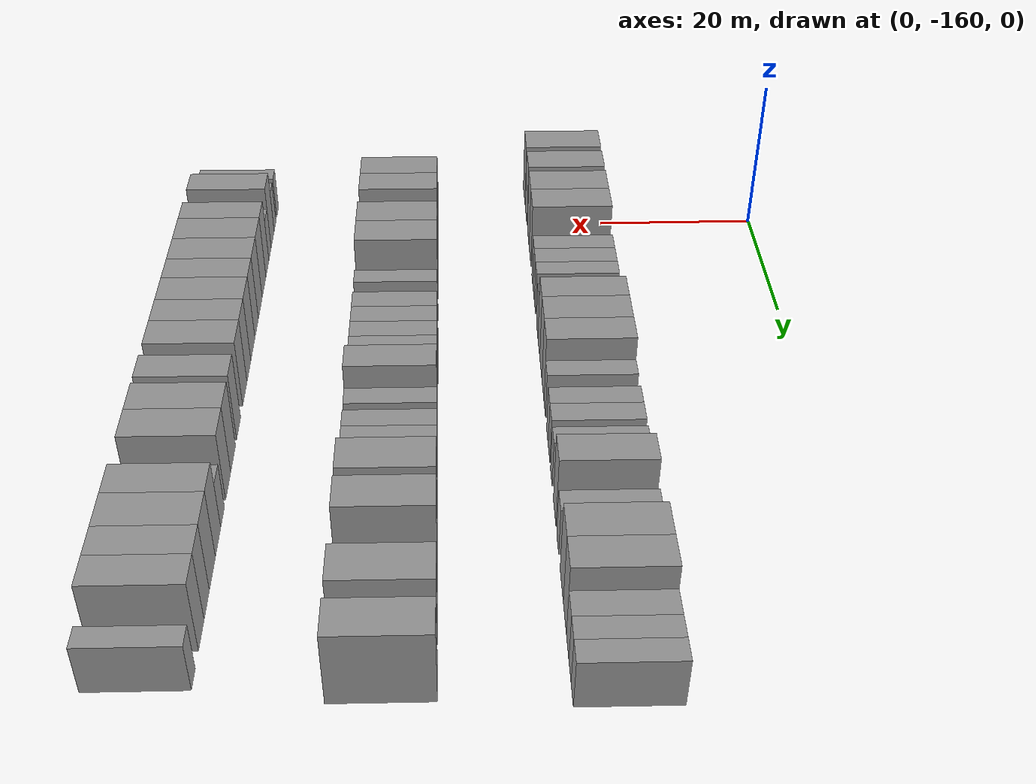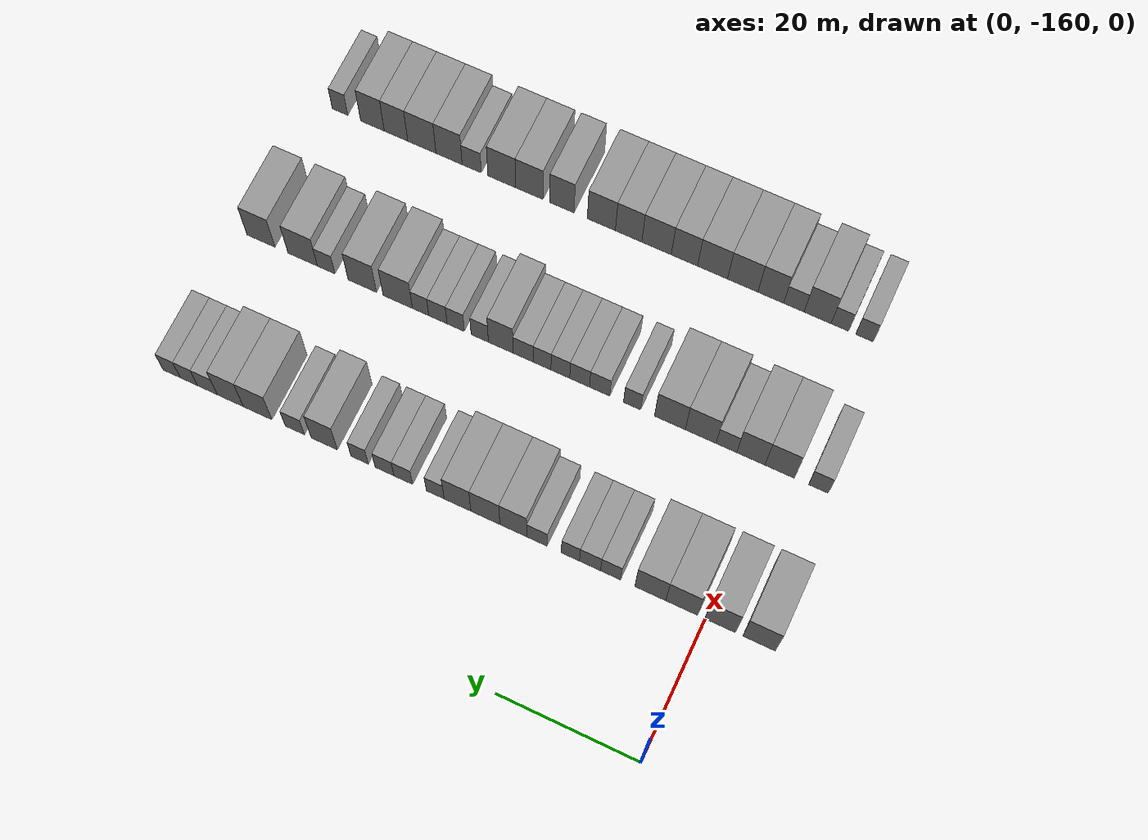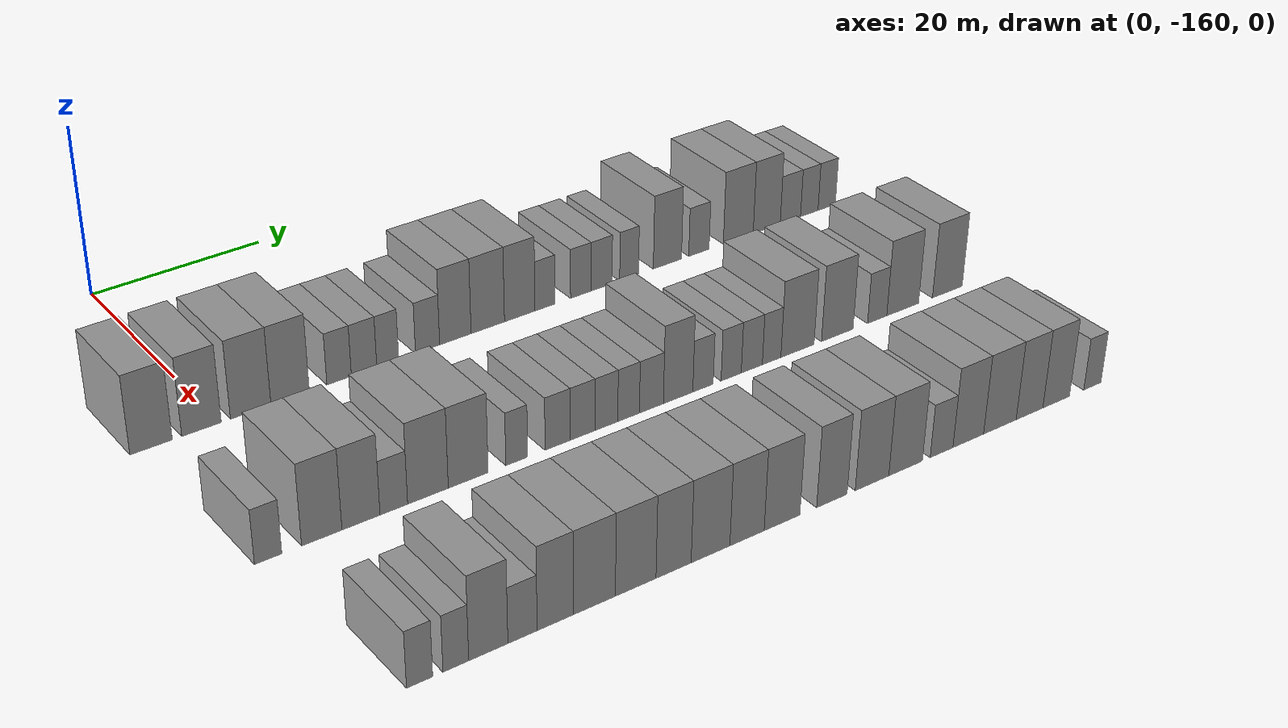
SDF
<sdf version="1.6">
 <world name="default">
  <model name="building_22">
   <static>1</static>
   <pose>25.0000 -167.3028 0 0.000000 0.000000 0.000000</pose>
   <link name="link">
    <pose>0 0 4.50 0 0 0</pose>
    <collision name="collision"><geometry><box><size>10.0000 4.4582 9.0000</size></box></geometry></collision>
    <visual name="visual">
     <cast_shadows>0</cast_shadows>
     <geometry><box><size>10.0000 4.4582 9.0000</size></box></geometry>
     <material>
      <script>
       <uri>model://grey_wall/materials/scripts</uri>
       <uri>model://grey_wall/materials/textures</uri>
       <name>vrc/grey_wall</name>
      </script>
     </material>
    </visual>
   </link>
  </model>
  <model name="building_23">
   <static>1</static>
   <pose>25.0000 -161.9479 0 0.000000 0.000000 0.000000</pose>
   <link name="link">
    <pose>0 0 4.50 0 0 0</pose>
    <collision name="collision"><geometry><box><size>10.0000 4.2517 9.0000</size></box></geometry></collision>
    <visual name="visual">
     <cast_shadows>0</cast_shadows>
     <geometry><box><size>10.0000 4.2517 9.0000</size></box></geometry>
     <material>
      <script>
       <uri>model://grey_wall/materials/scripts</uri>
       <uri>model://grey_wall/materials/textures</uri>
       <name>vrc/grey_wall</name>
      </script>
     </material>
    </visual>
   </link>
  </model>
  <model name="building_24">
   <static>1</static>
   <pose>25.0000 -156.5929 0 0.000000 0.000000 0.000000</pose>
   <link name="link">
    <pose>0 0 4.50 0 0 0</pose>
    <collision name="collision"><geometry><box><size>10.0000 4.4582 9.0000</size></box></geometry></collision>
    <visual name="visual">
     <cast_shadows>0</cast_shadows>
     <geometry><box><size>10.0000 4.4582 9.0000</size></box></geometry>
     <material>
      <script>
       <uri>model://grey_wall/materials/scripts</uri>
       <uri>model://grey_wall/materials/textures</uri>
       <name>vrc/grey_wall</name>
      </script>
     </material>
    </visual>
   </link>
  </model>
  <model name="building_25">
   <static>1</static>
   <pose>25.0000 -152.2064 0 0.000000 0.000000 0.000000</pose>
   <link name="link">
    <pose>0 0 4.50 0 0 0</pose>
    <collision name="collision"><geometry><box><size>10.0000 4.3148 9.0000</size></box></geometry></collision>
    <visual name="visual">
     <cast_shadows>0</cast_shadows>
     <geometry><box><size>10.0000 4.3148 9.0000</size></box></geometry>
     <material>
      <script>
       <uri>model://grey_wall/materials/scripts</uri>
       <uri>model://grey_wall/materials/textures</uri>
       <name>vrc/grey_wall</name>
      </script>
     </material>
    </visual>
   </link>
  </model>
  <model name="building_26">
   <static>1</static>
   <pose>25.0000 -146.6373 0 0.000000 0.000000 0.000000</pose>
   <link name="link">
    <pose>0 0 3.00 0 0 0</pose>
    <collision name="collision"><geometry><box><size>10.0000 2.8234 6.0000</size></box></geometry></collision>
    <visual name="visual">
     <cast_shadows>0</cast_shadows>
     <geometry><box><size>10.0000 2.8234 6.0000</size></box></geometry>
     <material>
      <script>
       <uri>model://grey_wall/materials/scripts</uri>
       <uri>model://grey_wall/materials/textures</uri>
       <name>vrc/grey_wall</name>
      </script>
     </material>
    </visual>
   </link>
  </model>
  <model name="building_27">
   <static>1</static>
   <pose>25.0000 -143.7448 0 0.000000 0.000000 0.000000</pose>
   <link name="link">
    <pose>0 0 3.00 0 0 0</pose>
    <collision name="collision"><geometry><box><size>10.0000 2.9617 6.0000</size></box></geometry></collision>
    <visual name="visual">
     <cast_shadows>0</cast_shadows>
     <geometry><box><size>10.0000 2.9617 6.0000</size></box></geometry>
     <material>
      <script>
       <uri>model://grey_wall/materials/scripts</uri>
       <uri>model://grey_wall/materials/textures</uri>
       <name>vrc/grey_wall</name>
      </script>
     </material>
    </visual>
   </link>
  </model>
  <model name="building_28">
   <static>1</static>
   <pose>25.0000 -140.9733 0 0.000000 0.000000 0.000000</pose>
   <link name="link">
    <pose>0 0 3.00 0 0 0</pose>
    <collision name="collision"><geometry><box><size>10.0000 2.5812 6.0000</size></box></geometry></collision>
    <visual name="visual">
     <cast_shadows>0</cast_shadows>
     <geometry><box><size>10.0000 2.5812 6.0000</size></box></geometry>
     <material>
      <script>
       <uri>model://grey_wall/materials/scripts</uri>
       <uri>model://grey_wall/materials/textures</uri>
       <name>vrc/grey_wall</name>
      </script>
     </material>
    </visual>
   </link>
  </model>
  <model name="building_29">
   <static>1</static>
   <pose>25.0000 -136.2262 0 0.000000 0.000000 0.000000</pose>
   <link name="link">
    <pose>0 0 3.00 0 0 0</pose>
    <collision name="collision"><geometry><box><size>10.0000 2.9131 6.0000</size></box></geometry></collision>
    <visual name="visual">
     <cast_shadows>0</cast_shadows>
     <geometry><box><size>10.0000 2.9131 6.0000</size></box></geometry>
     <material>
      <script>
       <uri>model://grey_wall/materials/scripts</uri>
       <uri>model://grey_wall/materials/textures</uri>
       <name>vrc/grey_wall</name>
      </script>
     </material>
    </visual>
   </link>
  </model>
  <model name="building_30">
   <static>1</static>
   <pose>25.0000 -132.8486 0 0.000000 0.000000 0.000000</pose>
   <link name="link">
    <pose>0 0 4.50 0 0 0</pose>
    <collision name="collision"><geometry><box><size>10.0000 3.8419 9.0000</size></box></geometry></collision>
    <visual name="visual">
     <cast_shadows>0</cast_shadows>
     <geometry><box><size>10.0000 3.8419 9.0000</size></box></geometry>
     <material>
      <script>
       <uri>model://grey_wall/materials/scripts</uri>
       <uri>model://grey_wall/materials/textures</uri>
       <name>vrc/grey_wall</name>
      </script>
     </material>
    </visual>
   </link>
  </model>
  <model name="building_31">
   <static>1</static>
   <pose>25.0000 -128.8519 0 0.000000 0.000000 0.000000</pose>
   <link name="link">
    <pose>0 0 4.50 0 0 0</pose>
    <collision name="collision"><geometry><box><size>10.0000 4.1516 9.0000</size></box></geometry></collision>
    <visual name="visual">
     <cast_shadows>0</cast_shadows>
     <geometry><box><size>10.0000 4.1516 9.0000</size></box></geometry>
     <material>
      <script>
       <uri>model://grey_wall/materials/scripts</uri>
       <uri>model://grey_wall/materials/textures</uri>
       <name>vrc/grey_wall</name>
      </script>
     </material>
    </visual>
   </link>
  </model>
  <model name="building_32">
   <static>1</static>
   <pose>25.0000 -124.8471 0 0.000000 0.000000 0.000000</pose>
   <link name="link">
    <pose>0 0 4.50 0 0 0</pose>
    <collision name="collision"><geometry><box><size>10.0000 3.8579 9.0000</size></box></geometry></collision>
    <visual name="visual">
     <cast_shadows>0</cast_shadows>
     <geometry><box><size>10.0000 3.8579 9.0000</size></box></geometry>
     <material>
      <script>
       <uri>model://grey_wall/materials/scripts</uri>
       <uri>model://grey_wall/materials/textures</uri>
       <name>vrc/grey_wall</name>
      </script>
     </material>
    </visual>
   </link>
  </model>
  <model name="building_33">
   <static>1</static>
   <pose>25.0000 -121.6327 0 0.000000 0.000000 0.000000</pose>
   <link name="link">
    <pose>0 0 3.00 0 0 0</pose>
    <collision name="collision"><geometry><box><size>10.0000 2.5709 6.0000</size></box></geometry></collision>
    <visual name="visual">
     <cast_shadows>0</cast_shadows>
     <geometry><box><size>10.0000 2.5709 6.0000</size></box></geometry>
     <material>
      <script>
       <uri>model://grey_wall/materials/scripts</uri>
       <uri>model://grey_wall/materials/textures</uri>
       <name>vrc/grey_wall</name>
      </script>
     </material>
    </visual>
   </link>
  </model>
  <model name="building_34">
   <static>1</static>
   <pose>25.0000 -117.0022 0 0.000000 0.000000 0.000000</pose>
   <link name="link">
    <pose>0 0 3.00 0 0 0</pose>
    <collision name="collision"><geometry><box><size>10.0000 2.6902 6.0000</size></box></geometry></collision>
    <visual name="visual">
     <cast_shadows>0</cast_shadows>
     <geometry><box><size>10.0000 2.6902 6.0000</size></box></geometry>
     <material>
      <script>
       <uri>model://grey_wall/materials/scripts</uri>
       <uri>model://grey_wall/materials/textures</uri>
       <name>vrc/grey_wall</name>
      </script>
     </material>
    </visual>
   </link>
  </model>
  <model name="building_35">
   <static>1</static>
   <pose>25.0000 -114.2729 0 0.000000 0.000000 0.000000</pose>
   <link name="link">
    <pose>0 0 3.00 0 0 0</pose>
    <collision name="collision"><geometry><box><size>10.0000 2.7684 6.0000</size></box></geometry></collision>
    <visual name="visual">
     <cast_shadows>0</cast_shadows>
     <geometry><box><size>10.0000 2.7684 6.0000</size></box></geometry>
     <material>
      <script>
       <uri>model://grey_wall/materials/scripts</uri>
       <uri>model://grey_wall/materials/textures</uri>
       <name>vrc/grey_wall</name>
      </script>
     </material>
    </visual>
   </link>
  </model>
  <model name="building_36">
   <static>1</static>
   <pose>25.0000 -110.6219 0 0.000000 0.000000 0.000000</pose>
   <link name="link">
    <pose>0 0 3.00 0 0 0</pose>
    <collision name="collision"><geometry><box><size>10.0000 2.5334 6.0000</size></box></geometry></collision>
    <visual name="visual">
     <cast_shadows>0</cast_shadows>
     <geometry><box><size>10.0000 2.5334 6.0000</size></box></geometry>
     <material>
      <script>
       <uri>model://grey_wall/materials/scripts</uri>
       <uri>model://grey_wall/materials/textures</uri>
       <name>vrc/grey_wall</name>
      </script>
     </material>
    </visual>
   </link>
  </model>
  <model name="building_37">
   <static>1</static>
   <pose>25.0000 -105.4284 0 0.000000 0.000000 0.000000</pose>
   <link name="link">
    <pose>0 0 4.50 0 0 0</pose>
    <collision name="collision"><geometry><box><size>10.0000 3.8535 9.0000</size></box></geometry></collision>
    <visual name="visual">
     <cast_shadows>0</cast_shadows>
     <geometry><box><size>10.0000 3.8535 9.0000</size></box></geometry>
     <material>
      <script>
       <uri>model://grey_wall/materials/scripts</uri>
       <uri>model://grey_wall/materials/textures</uri>
       <name>vrc/grey_wall</name>
      </script>
     </material>
    </visual>
   </link>
  </model>
  <model name="building_38">
   <static>1</static>
   <pose>25.0000 -101.0834 0 0.000000 0.000000 0.000000</pose>
   <link name="link">
    <pose>0 0 3.00 0 0 0</pose>
    <collision name="collision"><geometry><box><size>10.0000 2.8365 6.0000</size></box></geometry></collision>
    <visual name="visual">
     <cast_shadows>0</cast_shadows>
     <geometry><box><size>10.0000 2.8365 6.0000</size></box></geometry>
     <material>
      <script>
       <uri>model://grey_wall/materials/scripts</uri>
       <uri>model://grey_wall/materials/textures</uri>
       <name>vrc/grey_wall</name>
      </script>
     </material>
    </visual>
   </link>
  </model>
  <model name="building_39">
   <static>1</static>
   <pose>25.0000 -95.5377 0 0.000000 0.000000 0.000000</pose>
   <link name="link">
    <pose>0 0 4.50 0 0 0</pose>
    <collision name="collision"><geometry><box><size>10.0000 4.2549 9.0000</size></box></geometry></collision>
    <visual name="visual">
     <cast_shadows>0</cast_shadows>
     <geometry><box><size>10.0000 4.2549 9.0000</size></box></geometry>
     <material>
      <script>
       <uri>model://grey_wall/materials/scripts</uri>
       <uri>model://grey_wall/materials/textures</uri>
       <name>vrc/grey_wall</name>
      </script>
     </material>
    </visual>
   </link>
  </model>
  <model name="building_40">
   <static>1</static>
   <pose>25.0000 -91.4552 0 0.000000 0.000000 0.000000</pose>
   <link name="link">
    <pose>0 0 4.50 0 0 0</pose>
    <collision name="collision"><geometry><box><size>10.0000 3.9101 9.0000</size></box></geometry></collision>
    <visual name="visual">
     <cast_shadows>0</cast_shadows>
     <geometry><box><size>10.0000 3.9101 9.0000</size></box></geometry>
     <material>
      <script>
       <uri>model://grey_wall/materials/scripts</uri>
       <uri>model://grey_wall/materials/textures</uri>
       <name>vrc/grey_wall</name>
      </script>
     </material>
    </visual>
   </link>
  </model>
  <model name="building_41">
   <static>1</static>
   <pose>25.0000 -88.0144 0 0.000000 0.000000 0.000000</pose>
   <link name="link">
    <pose>0 0 3.00 0 0 0</pose>
    <collision name="collision"><geometry><box><size>10.0000 2.9714 6.0000</size></box></geometry></collision>
    <visual name="visual">
     <cast_shadows>0</cast_shadows>
     <geometry><box><size>10.0000 2.9714 6.0000</size></box></geometry>
     <material>
      <script>
       <uri>model://grey_wall/materials/scripts</uri>
       <uri>model://grey_wall/materials/textures</uri>
       <name>vrc/grey_wall</name>
      </script>
     </material>
    </visual>
   </link>
  </model>
  <model name="building_42">
   <static>1</static>
   <pose>25.0000 -85.2335 0 0.000000 0.000000 0.000000</pose>
   <link name="link">
    <pose>0 0 3.00 0 0 0</pose>
    <collision name="collision"><geometry><box><size>10.0000 2.5903 6.0000</size></box></geometry></collision>
    <visual name="visual">
     <cast_shadows>0</cast_shadows>
     <geometry><box><size>10.0000 2.5903 6.0000</size></box></geometry>
     <material>
      <script>
       <uri>model://grey_wall/materials/scripts</uri>
       <uri>model://grey_wall/materials/textures</uri>
       <name>vrc/grey_wall</name>
      </script>
     </material>
    </visual>
   </link>
  </model>
  <model name="building_43">
   <static>1</static>
   <pose>25.0000 -82.6358 0 0.000000 0.000000 0.000000</pose>
   <link name="link">
    <pose>0 0 3.00 0 0 0</pose>
    <collision name="collision"><geometry><box><size>10.0000 2.6051 6.0000</size></box></geometry></collision>
    <visual name="visual">
     <cast_shadows>0</cast_shadows>
     <geometry><box><size>10.0000 2.6051 6.0000</size></box></geometry>
     <material>
      <script>
       <uri>model://grey_wall/materials/scripts</uri>
       <uri>model://grey_wall/materials/textures</uri>
       <name>vrc/grey_wall</name>
      </script>
     </material>
    </visual>
   </link>
  </model>
  <model name="building_143">
   <static>1</static>
   <pose>47.0000 -166.3083 0 0.000000 0.000000 0.000000</pose>
   <link name="link">
    <pose>0 0 3.00 0 0 0</pose>
    <collision name="collision"><geometry><box><size>10.0000 2.7580 6.0000</size></box></geometry></collision>
    <visual name="visual">
     <cast_shadows>0</cast_shadows>
     <geometry><box><size>10.0000 2.7580 6.0000</size></box></geometry>
     <material>
      <script>
       <uri>model://grey_wall/materials/scripts</uri>
       <uri>model://grey_wall/materials/textures</uri>
       <name>vrc/grey_wall</name>
      </script>
     </material>
    </visual>
   </link>
  </model>
  <model name="building_144">
   <static>1</static>
   <pose>47.0000 -160.8462 0 0.000000 0.000000 0.000000</pose>
   <link name="link">
    <pose>0 0 4.50 0 0 0</pose>
    <collision name="collision"><geometry><box><size>10.0000 4.1661 9.0000</size></box></geometry></collision>
    <visual name="visual">
     <cast_shadows>0</cast_shadows>
     <geometry><box><size>10.0000 4.1661 9.0000</size></box></geometry>
     <material>
      <script>
       <uri>model://grey_wall/materials/scripts</uri>
       <uri>model://grey_wall/materials/textures</uri>
       <name>vrc/grey_wall</name>
      </script>
     </material>
    </visual>
   </link>
  </model>
  <model name="building_145">
   <static>1</static>
   <pose>47.0000 -156.7609 0 0.000000 0.000000 0.000000</pose>
   <link name="link">
    <pose>0 0 4.50 0 0 0</pose>
    <collision name="collision"><geometry><box><size>10.0000 4.0044 9.0000</size></box></geometry></collision>
    <visual name="visual">
     <cast_shadows>0</cast_shadows>
     <geometry><box><size>10.0000 4.0044 9.0000</size></box></geometry>
     <material>
      <script>
       <uri>model://grey_wall/materials/scripts</uri>
       <uri>model://grey_wall/materials/textures</uri>
       <name>vrc/grey_wall</name>
      </script>
     </material>
    </visual>
   </link>
  </model>
  <model name="building_146">
   <static>1</static>
   <pose>47.0000 -153.2811 0 0.000000 0.000000 0.000000</pose>
   <link name="link">
    <pose>0 0 3.00 0 0 0</pose>
    <collision name="collision"><geometry><box><size>10.0000 2.9552 6.0000</size></box></geometry></collision>
    <visual name="visual">
     <cast_shadows>0</cast_shadows>
     <geometry><box><size>10.0000 2.9552 6.0000</size></box></geometry>
     <material>
      <script>
       <uri>model://grey_wall/materials/scripts</uri>
       <uri>model://grey_wall/materials/textures</uri>
       <name>vrc/grey_wall</name>
      </script>
     </material>
    </visual>
   </link>
  </model>
  <model name="building_147">
   <static>1</static>
   <pose>47.0000 -149.5906 0 0.000000 0.000000 0.000000</pose>
   <link name="link">
    <pose>0 0 4.50 0 0 0</pose>
    <collision name="collision"><geometry><box><size>10.0000 4.4259 9.0000</size></box></geometry></collision>
    <visual name="visual">
     <cast_shadows>0</cast_shadows>
     <geometry><box><size>10.0000 4.4259 9.0000</size></box></geometry>
     <material>
      <script>
       <uri>model://grey_wall/materials/scripts</uri>
       <uri>model://grey_wall/materials/textures</uri>
       <name>vrc/grey_wall</name>
      </script>
     </material>
    </visual>
   </link>
  </model>
  <model name="building_148">
   <static>1</static>
   <pose>47.0000 -145.1661 0 0.000000 0.000000 0.000000</pose>
   <link name="link">
    <pose>0 0 4.50 0 0 0</pose>
    <collision name="collision"><geometry><box><size>10.0000 4.4230 9.0000</size></box></geometry></collision>
    <visual name="visual">
     <cast_shadows>0</cast_shadows>
     <geometry><box><size>10.0000 4.4230 9.0000</size></box></geometry>
     <material>
      <script>
       <uri>model://grey_wall/materials/scripts</uri>
       <uri>model://grey_wall/materials/textures</uri>
       <name>vrc/grey_wall</name>
      </script>
     </material>
    </visual>
   </link>
  </model>
  <model name="building_149">
   <static>1</static>
   <pose>47.0000 -139.7112 0 0.000000 0.000000 0.000000</pose>
   <link name="link">
    <pose>0 0 3.00 0 0 0</pose>
    <collision name="collision"><geometry><box><size>10.0000 2.4870 6.0000</size></box></geometry></collision>
    <visual name="visual">
     <cast_shadows>0</cast_shadows>
     <geometry><box><size>10.0000 2.4870 6.0000</size></box></geometry>
     <material>
      <script>
       <uri>model://grey_wall/materials/scripts</uri>
       <uri>model://grey_wall/materials/textures</uri>
       <name>vrc/grey_wall</name>
      </script>
     </material>
    </visual>
   </link>
  </model>
  <model name="building_150">
   <static>1</static>
   <pose>47.0000 -134.9956 0 0.000000 0.000000 0.000000</pose>
   <link name="link">
    <pose>0 0 3.00 0 0 0</pose>
    <collision name="collision"><geometry><box><size>10.0000 2.9442 6.0000</size></box></geometry></collision>
    <visual name="visual">
     <cast_shadows>0</cast_shadows>
     <geometry><box><size>10.0000 2.9442 6.0000</size></box></geometry>
     <material>
      <script>
       <uri>model://grey_wall/materials/scripts</uri>
       <uri>model://grey_wall/materials/textures</uri>
       <name>vrc/grey_wall</name>
      </script>
     </material>
    </visual>
   </link>
  </model>
  <model name="building_151">
   <static>1</static>
   <pose>47.0000 -132.0766 0 0.000000 0.000000 0.000000</pose>
   <link name="link">
    <pose>0 0 3.00 0 0 0</pose>
    <collision name="collision"><geometry><box><size>10.0000 2.8937 6.0000</size></box></geometry></collision>
    <visual name="visual">
     <cast_shadows>0</cast_shadows>
     <geometry><box><size>10.0000 2.8937 6.0000</size></box></geometry>
     <material>
      <script>
       <uri>model://grey_wall/materials/scripts</uri>
       <uri>model://grey_wall/materials/textures</uri>
       <name>vrc/grey_wall</name>
      </script>
     </material>
    </visual>
   </link>
  </model>
  <model name="building_152">
   <static>1</static>
   <pose>47.0000 -129.2573 0 0.000000 0.000000 0.000000</pose>
   <link name="link">
    <pose>0 0 3.00 0 0 0</pose>
    <collision name="collision"><geometry><box><size>10.0000 2.7448 6.0000</size></box></geometry></collision>
    <visual name="visual">
     <cast_shadows>0</cast_shadows>
     <geometry><box><size>10.0000 2.7448 6.0000</size></box></geometry>
     <material>
      <script>
       <uri>model://grey_wall/materials/scripts</uri>
       <uri>model://grey_wall/materials/textures</uri>
       <name>vrc/grey_wall</name>
      </script>
     </material>
    </visual>
   </link>
  </model>
  <model name="building_153">
   <static>1</static>
   <pose>47.0000 -126.5760 0 0.000000 0.000000 0.000000</pose>
   <link name="link">
    <pose>0 0 3.00 0 0 0</pose>
    <collision name="collision"><geometry><box><size>10.0000 2.6178 6.0000</size></box></geometry></collision>
    <visual name="visual">
     <cast_shadows>0</cast_shadows>
     <geometry><box><size>10.0000 2.6178 6.0000</size></box></geometry>
     <material>
      <script>
       <uri>model://grey_wall/materials/scripts</uri>
       <uri>model://grey_wall/materials/textures</uri>
       <name>vrc/grey_wall</name>
      </script>
     </material>
    </visual>
   </link>
  </model>
  <model name="building_154">
   <static>1</static>
   <pose>47.0000 -123.7996 0 0.000000 0.000000 0.000000</pose>
   <link name="link">
    <pose>0 0 3.00 0 0 0</pose>
    <collision name="collision"><geometry><box><size>10.0000 2.9350 6.0000</size></box></geometry></collision>
    <visual name="visual">
     <cast_shadows>0</cast_shadows>
     <geometry><box><size>10.0000 2.9350 6.0000</size></box></geometry>
     <material>
      <script>
       <uri>model://grey_wall/materials/scripts</uri>
       <uri>model://grey_wall/materials/textures</uri>
       <name>vrc/grey_wall</name>
      </script>
     </material>
    </visual>
   </link>
  </model>
  <model name="building_155">
   <static>1</static>
   <pose>47.0000 -120.5014 0 0.000000 0.000000 0.000000</pose>
   <link name="link">
    <pose>0 0 4.50 0 0 0</pose>
    <collision name="collision"><geometry><box><size>10.0000 3.6615 9.0000</size></box></geometry></collision>
    <visual name="visual">
     <cast_shadows>0</cast_shadows>
     <geometry><box><size>10.0000 3.6615 9.0000</size></box></geometry>
     <material>
      <script>
       <uri>model://grey_wall/materials/scripts</uri>
       <uri>model://grey_wall/materials/textures</uri>
       <name>vrc/grey_wall</name>
      </script>
     </material>
    </visual>
   </link>
  </model>
  <model name="building_156">
   <static>1</static>
   <pose>47.0000 -117.3857 0 0.000000 0.000000 0.000000</pose>
   <link name="link">
    <pose>0 0 3.00 0 0 0</pose>
    <collision name="collision"><geometry><box><size>10.0000 2.5698 6.0000</size></box></geometry></collision>
    <visual name="visual">
     <cast_shadows>0</cast_shadows>
     <geometry><box><size>10.0000 2.5698 6.0000</size></box></geometry>
     <material>
      <script>
       <uri>model://grey_wall/materials/scripts</uri>
       <uri>model://grey_wall/materials/textures</uri>
       <name>vrc/grey_wall</name>
      </script>
     </material>
    </visual>
   </link>
  </model>
  <model name="building_157">
   <static>1</static>
   <pose>47.0000 -113.8081 0 0.000000 0.000000 0.000000</pose>
   <link name="link">
    <pose>0 0 3.00 0 0 0</pose>
    <collision name="collision"><geometry><box><size>10.0000 2.5856 6.0000</size></box></geometry></collision>
    <visual name="visual">
     <cast_shadows>0</cast_shadows>
     <geometry><box><size>10.0000 2.5856 6.0000</size></box></geometry>
     <material>
      <script>
       <uri>model://grey_wall/materials/scripts</uri>
       <uri>model://grey_wall/materials/textures</uri>
       <name>vrc/grey_wall</name>
      </script>
     </material>
    </visual>
   </link>
  </model>
  <model name="building_158">
   <static>1</static>
   <pose>47.0000 -111.1490 0 0.000000 0.000000 0.000000</pose>
   <link name="link">
    <pose>0 0 3.00 0 0 0</pose>
    <collision name="collision"><geometry><box><size>10.0000 2.7325 6.0000</size></box></geometry></collision>
    <visual name="visual">
     <cast_shadows>0</cast_shadows>
     <geometry><box><size>10.0000 2.7325 6.0000</size></box></geometry>
     <material>
      <script>
       <uri>model://grey_wall/materials/scripts</uri>
       <uri>model://grey_wall/materials/textures</uri>
       <name>vrc/grey_wall</name>
      </script>
     </material>
    </visual>
   </link>
  </model>
  <model name="building_159">
   <static>1</static>
   <pose>47.0000 -108.5676 0 0.000000 0.000000 0.000000</pose>
   <link name="link">
    <pose>0 0 3.00 0 0 0</pose>
    <collision name="collision"><geometry><box><size>10.0000 2.4304 6.0000</size></box></geometry></collision>
    <visual name="visual">
     <cast_shadows>0</cast_shadows>
     <geometry><box><size>10.0000 2.4304 6.0000</size></box></geometry>
     <material>
      <script>
       <uri>model://grey_wall/materials/scripts</uri>
       <uri>model://grey_wall/materials/textures</uri>
       <name>vrc/grey_wall</name>
      </script>
     </material>
    </visual>
   </link>
  </model>
  <model name="building_160">
   <static>1</static>
   <pose>47.0000 -105.1446 0 0.000000 0.000000 0.000000</pose>
   <link name="link">
    <pose>0 0 4.50 0 0 0</pose>
    <collision name="collision"><geometry><box><size>10.0000 4.4156 9.0000</size></box></geometry></collision>
    <visual name="visual">
     <cast_shadows>0</cast_shadows>
     <geometry><box><size>10.0000 4.4156 9.0000</size></box></geometry>
     <material>
      <script>
       <uri>model://grey_wall/materials/scripts</uri>
       <uri>model://grey_wall/materials/textures</uri>
       <name>vrc/grey_wall</name>
      </script>
     </material>
    </visual>
   </link>
  </model>
  <model name="building_161">
   <static>1</static>
   <pose>47.0000 -99.7916 0 0.000000 0.000000 0.000000</pose>
   <link name="link">
    <pose>0 0 4.50 0 0 0</pose>
    <collision name="collision"><geometry><box><size>10.0000 4.2903 9.0000</size></box></geometry></collision>
    <visual name="visual">
     <cast_shadows>0</cast_shadows>
     <geometry><box><size>10.0000 4.2903 9.0000</size></box></geometry>
     <material>
      <script>
       <uri>model://grey_wall/materials/scripts</uri>
       <uri>model://grey_wall/materials/textures</uri>
       <name>vrc/grey_wall</name>
      </script>
     </material>
    </visual>
   </link>
  </model>
  <model name="building_162">
   <static>1</static>
   <pose>47.0000 -94.3077 0 0.000000 0.000000 0.000000</pose>
   <link name="link">
    <pose>0 0 3.00 0 0 0</pose>
    <collision name="collision"><geometry><box><size>10.0000 2.6775 6.0000</size></box></geometry></collision>
    <visual name="visual">
     <cast_shadows>0</cast_shadows>
     <geometry><box><size>10.0000 2.6775 6.0000</size></box></geometry>
     <material>
      <script>
       <uri>model://grey_wall/materials/scripts</uri>
       <uri>model://grey_wall/materials/textures</uri>
       <name>vrc/grey_wall</name>
      </script>
     </material>
    </visual>
   </link>
  </model>
  <model name="building_163">
   <static>1</static>
   <pose>47.0000 -90.7244 0 0.000000 0.000000 0.000000</pose>
   <link name="link">
    <pose>0 0 4.50 0 0 0</pose>
    <collision name="collision"><geometry><box><size>10.0000 4.4889 9.0000</size></box></geometry></collision>
    <visual name="visual">
     <cast_shadows>0</cast_shadows>
     <geometry><box><size>10.0000 4.4889 9.0000</size></box></geometry>
     <material>
      <script>
       <uri>model://grey_wall/materials/scripts</uri>
       <uri>model://grey_wall/materials/textures</uri>
       <name>vrc/grey_wall</name>
      </script>
     </material>
    </visual>
   </link>
  </model>
  <model name="building_164">
   <static>1</static>
   <pose>47.0000 -84.3274 0 0.000000 0.000000 0.000000</pose>
   <link name="link">
    <pose>0 0 4.50 0 0 0</pose>
    <collision name="collision"><geometry><box><size>10.0000 4.3051 9.0000</size></box></geometry></collision>
    <visual name="visual">
     <cast_shadows>0</cast_shadows>
     <geometry><box><size>10.0000 4.3051 9.0000</size></box></geometry>
     <material>
      <script>
       <uri>model://grey_wall/materials/scripts</uri>
       <uri>model://grey_wall/materials/textures</uri>
       <name>vrc/grey_wall</name>
      </script>
     </material>
    </visual>
   </link>
  </model>
  <model name="building_279">
   <static>1</static>
   <pose>69.0000 -163.8354 0 0.000000 0.000000 0.000000</pose>
   <link name="link">
    <pose>0 0 3.00 0 0 0</pose>
    <collision name="collision"><geometry><box><size>10.0000 2.5406 6.0000</size></box></geometry></collision>
    <visual name="visual">
     <cast_shadows>0</cast_shadows>
     <geometry><box><size>10.0000 2.5406 6.0000</size></box></geometry>
     <material>
      <script>
       <uri>model://grey_wall/materials/scripts</uri>
       <uri>model://grey_wall/materials/textures</uri>
       <name>vrc/grey_wall</name>
      </script>
     </material>
    </visual>
   </link>
  </model>
  <model name="building_280">
   <static>1</static>
   <pose>69.0000 -160.2941 0 0.000000 0.000000 0.000000</pose>
   <link name="link">
    <pose>0 0 3.00 0 0 0</pose>
    <collision name="collision"><geometry><box><size>10.0000 2.5420 6.0000</size></box></geometry></collision>
    <visual name="visual">
     <cast_shadows>0</cast_shadows>
     <geometry><box><size>10.0000 2.5420 6.0000</size></box></geometry>
     <material>
      <script>
       <uri>model://grey_wall/materials/scripts</uri>
       <uri>model://grey_wall/materials/textures</uri>
       <name>vrc/grey_wall</name>
      </script>
     </material>
    </visual>
   </link>
  </model>
  <model name="building_281">
   <static>1</static>
   <pose>69.0000 -157.0606 0 0.000000 0.000000 0.000000</pose>
   <link name="link">
    <pose>0 0 4.50 0 0 0</pose>
    <collision name="collision"><geometry><box><size>10.0000 3.9251 9.0000</size></box></geometry></collision>
    <visual name="visual">
     <cast_shadows>0</cast_shadows>
     <geometry><box><size>10.0000 3.9251 9.0000</size></box></geometry>
     <material>
      <script>
       <uri>model://grey_wall/materials/scripts</uri>
       <uri>model://grey_wall/materials/textures</uri>
       <name>vrc/grey_wall</name>
      </script>
     </material>
    </visual>
   </link>
  </model>
  <model name="building_282">
   <static>1</static>
   <pose>69.0000 -153.6053 0 0.000000 0.000000 0.000000</pose>
   <link name="link">
    <pose>0 0 3.00 0 0 0</pose>
    <collision name="collision"><geometry><box><size>10.0000 2.9856 6.0000</size></box></geometry></collision>
    <visual name="visual">
     <cast_shadows>0</cast_shadows>
     <geometry><box><size>10.0000 2.9856 6.0000</size></box></geometry>
     <material>
      <script>
       <uri>model://grey_wall/materials/scripts</uri>
       <uri>model://grey_wall/materials/textures</uri>
       <name>vrc/grey_wall</name>
      </script>
     </material>
    </visual>
   </link>
  </model>
  <model name="building_283">
   <static>1</static>
   <pose>69.0000 -150.2391 0 0.000000 0.000000 0.000000</pose>
   <link name="link">
    <pose>0 0 4.50 0 0 0</pose>
    <collision name="collision"><geometry><box><size>10.0000 3.7467 9.0000</size></box></geometry></collision>
    <visual name="visual">
     <cast_shadows>0</cast_shadows>
     <geometry><box><size>10.0000 3.7467 9.0000</size></box></geometry>
     <material>
      <script>
       <uri>model://grey_wall/materials/scripts</uri>
       <uri>model://grey_wall/materials/textures</uri>
       <name>vrc/grey_wall</name>
      </script>
     </material>
    </visual>
   </link>
  </model>
  <model name="building_284">
   <static>1</static>
   <pose>69.0000 -146.1280 0 0.000000 0.000000 0.000000</pose>
   <link name="link">
    <pose>0 0 4.50 0 0 0</pose>
    <collision name="collision"><geometry><box><size>10.0000 4.4756 9.0000</size></box></geometry></collision>
    <visual name="visual">
     <cast_shadows>0</cast_shadows>
     <geometry><box><size>10.0000 4.4756 9.0000</size></box></geometry>
     <material>
      <script>
       <uri>model://grey_wall/materials/scripts</uri>
       <uri>model://grey_wall/materials/textures</uri>
       <name>vrc/grey_wall</name>
      </script>
     </material>
    </visual>
   </link>
  </model>
  <model name="building_285">
   <static>1</static>
   <pose>69.0000 -141.6885 0 0.000000 0.000000 0.000000</pose>
   <link name="link">
    <pose>0 0 4.50 0 0 0</pose>
    <collision name="collision"><geometry><box><size>10.0000 4.4033 9.0000</size></box></geometry></collision>
    <visual name="visual">
     <cast_shadows>0</cast_shadows>
     <geometry><box><size>10.0000 4.4033 9.0000</size></box></geometry>
     <material>
      <script>
       <uri>model://grey_wall/materials/scripts</uri>
       <uri>model://grey_wall/materials/textures</uri>
       <name>vrc/grey_wall</name>
      </script>
     </material>
    </visual>
   </link>
  </model>
  <model name="building_286">
   <static>1</static>
   <pose>69.0000 -137.5381 0 0.000000 0.000000 0.000000</pose>
   <link name="link">
    <pose>0 0 4.50 0 0 0</pose>
    <collision name="collision"><geometry><box><size>10.0000 3.8975 9.0000</size></box></geometry></collision>
    <visual name="visual">
     <cast_shadows>0</cast_shadows>
     <geometry><box><size>10.0000 3.8975 9.0000</size></box></geometry>
     <material>
      <script>
       <uri>model://grey_wall/materials/scripts</uri>
       <uri>model://grey_wall/materials/textures</uri>
       <name>vrc/grey_wall</name>
      </script>
     </material>
    </visual>
   </link>
  </model>
  <model name="building_287">
   <static>1</static>
   <pose>69.0000 -133.4015 0 0.000000 0.000000 0.000000</pose>
   <link name="link">
    <pose>0 0 4.50 0 0 0</pose>
    <collision name="collision"><geometry><box><size>10.0000 4.3757 9.0000</size></box></geometry></collision>
    <visual name="visual">
     <cast_shadows>0</cast_shadows>
     <geometry><box><size>10.0000 4.3757 9.0000</size></box></geometry>
     <material>
      <script>
       <uri>model://grey_wall/materials/scripts</uri>
       <uri>model://grey_wall/materials/textures</uri>
       <name>vrc/grey_wall</name>
      </script>
     </material>
    </visual>
   </link>
  </model>
  <model name="building_288">
   <static>1</static>
   <pose>69.0000 -129.2329 0 0.000000 0.000000 0.000000</pose>
   <link name="link">
    <pose>0 0 4.50 0 0 0</pose>
    <collision name="collision"><geometry><box><size>10.0000 3.9616 9.0000</size></box></geometry></collision>
    <visual name="visual">
     <cast_shadows>0</cast_shadows>
     <geometry><box><size>10.0000 3.9616 9.0000</size></box></geometry>
     <material>
      <script>
       <uri>model://grey_wall/materials/scripts</uri>
       <uri>model://grey_wall/materials/textures</uri>
       <name>vrc/grey_wall</name>
      </script>
     </material>
    </visual>
   </link>
  </model>
  <model name="building_289">
   <static>1</static>
   <pose>69.0000 -125.1490 0 0.000000 0.000000 0.000000</pose>
   <link name="link">
    <pose>0 0 4.50 0 0 0</pose>
    <collision name="collision"><geometry><box><size>10.0000 4.2062 9.0000</size></box></geometry></collision>
    <visual name="visual">
     <cast_shadows>0</cast_shadows>
     <geometry><box><size>10.0000 4.2062 9.0000</size></box></geometry>
     <material>
      <script>
       <uri>model://grey_wall/materials/scripts</uri>
       <uri>model://grey_wall/materials/textures</uri>
       <name>vrc/grey_wall</name>
      </script>
     </material>
    </visual>
   </link>
  </model>
  <model name="building_290">
   <static>1</static>
   <pose>69.0000 -119.2018 0 0.000000 0.000000 0.000000</pose>
   <link name="link">
    <pose>0 0 4.50 0 0 0</pose>
    <collision name="collision"><geometry><box><size>10.0000 3.6883 9.0000</size></box></geometry></collision>
    <visual name="visual">
     <cast_shadows>0</cast_shadows>
     <geometry><box><size>10.0000 3.6883 9.0000</size></box></geometry>
     <material>
      <script>
       <uri>model://grey_wall/materials/scripts</uri>
       <uri>model://grey_wall/materials/textures</uri>
       <name>vrc/grey_wall</name>
      </script>
     </material>
    </visual>
   </link>
  </model>
  <model name="building_291">
   <static>1</static>
   <pose>69.0000 -114.2791 0 0.000000 0.000000 0.000000</pose>
   <link name="link">
    <pose>0 0 4.50 0 0 0</pose>
    <collision name="collision"><geometry><box><size>10.0000 4.1570 9.0000</size></box></geometry></collision>
    <visual name="visual">
     <cast_shadows>0</cast_shadows>
     <geometry><box><size>10.0000 4.1570 9.0000</size></box></geometry>
     <material>
      <script>
       <uri>model://grey_wall/materials/scripts</uri>
       <uri>model://grey_wall/materials/textures</uri>
       <name>vrc/grey_wall</name>
      </script>
     </material>
    </visual>
   </link>
  </model>
  <model name="building_292">
   <static>1</static>
   <pose>69.0000 -110.0781 0 0.000000 0.000000 0.000000</pose>
   <link name="link">
    <pose>0 0 4.50 0 0 0</pose>
    <collision name="collision"><geometry><box><size>10.0000 4.2450 9.0000</size></box></geometry></collision>
    <visual name="visual">
     <cast_shadows>0</cast_shadows>
     <geometry><box><size>10.0000 4.2450 9.0000</size></box></geometry>
     <material>
      <script>
       <uri>model://grey_wall/materials/scripts</uri>
       <uri>model://grey_wall/materials/textures</uri>
       <name>vrc/grey_wall</name>
      </script>
     </material>
    </visual>
   </link>
  </model>
  <model name="building_293">
   <static>1</static>
   <pose>69.0000 -105.4893 0 0.000000 0.000000 0.000000</pose>
   <link name="link">
    <pose>0 0 3.00 0 0 0</pose>
    <collision name="collision"><geometry><box><size>10.0000 2.9327 6.0000</size></box></geometry></collision>
    <visual name="visual">
     <cast_shadows>0</cast_shadows>
     <geometry><box><size>10.0000 2.9327 6.0000</size></box></geometry>
     <material>
      <script>
       <uri>model://grey_wall/materials/scripts</uri>
       <uri>model://grey_wall/materials/textures</uri>
       <name>vrc/grey_wall</name>
      </script>
     </material>
    </visual>
   </link>
  </model>
  <model name="building_294">
   <static>1</static>
   <pose>69.0000 -102.0092 0 0.000000 0.000000 0.000000</pose>
   <link name="link">
    <pose>0 0 4.50 0 0 0</pose>
    <collision name="collision"><geometry><box><size>10.0000 4.0274 9.0000</size></box></geometry></collision>
    <visual name="visual">
     <cast_shadows>0</cast_shadows>
     <geometry><box><size>10.0000 4.0274 9.0000</size></box></geometry>
     <material>
      <script>
       <uri>model://grey_wall/materials/scripts</uri>
       <uri>model://grey_wall/materials/textures</uri>
       <name>vrc/grey_wall</name>
      </script>
     </material>
    </visual>
   </link>
  </model>
  <model name="building_295">
   <static>1</static>
   <pose>69.0000 -97.8143 0 0.000000 0.000000 0.000000</pose>
   <link name="link">
    <pose>0 0 4.50 0 0 0</pose>
    <collision name="collision"><geometry><box><size>10.0000 4.3625 9.0000</size></box></geometry></collision>
    <visual name="visual">
     <cast_shadows>0</cast_shadows>
     <geometry><box><size>10.0000 4.3625 9.0000</size></box></geometry>
     <material>
      <script>
       <uri>model://grey_wall/materials/scripts</uri>
       <uri>model://grey_wall/materials/textures</uri>
       <name>vrc/grey_wall</name>
      </script>
     </material>
    </visual>
   </link>
  </model>
  <model name="building_296">
   <static>1</static>
   <pose>69.0000 -93.8150 0 0.000000 0.000000 0.000000</pose>
   <link name="link">
    <pose>0 0 4.50 0 0 0</pose>
    <collision name="collision"><geometry><box><size>10.0000 3.6361 9.0000</size></box></geometry></collision>
    <visual name="visual">
     <cast_shadows>0</cast_shadows>
     <geometry><box><size>10.0000 3.6361 9.0000</size></box></geometry>
     <material>
      <script>
       <uri>model://grey_wall/materials/scripts</uri>
       <uri>model://grey_wall/materials/textures</uri>
       <name>vrc/grey_wall</name>
      </script>
     </material>
    </visual>
   </link>
  </model>
  <model name="building_297">
   <static>1</static>
   <pose>69.0000 -90.1537 0 0.000000 0.000000 0.000000</pose>
   <link name="link">
    <pose>0 0 4.50 0 0 0</pose>
    <collision name="collision"><geometry><box><size>10.0000 3.6865 9.0000</size></box></geometry></collision>
    <visual name="visual">
     <cast_shadows>0</cast_shadows>
     <geometry><box><size>10.0000 3.6865 9.0000</size></box></geometry>
     <material>
      <script>
       <uri>model://grey_wall/materials/scripts</uri>
       <uri>model://grey_wall/materials/textures</uri>
       <name>vrc/grey_wall</name>
      </script>
     </material>
    </visual>
   </link>
  </model>
  <model name="building_298">
   <static>1</static>
   <pose>69.0000 -85.0965 0 0.000000 0.000000 0.000000</pose>
   <link name="link">
    <pose>0 0 3.00 0 0 0</pose>
    <collision name="collision"><geometry><box><size>10.0000 2.4277 6.0000</size></box></geometry></collision>
    <visual name="visual">
     <cast_shadows>0</cast_shadows>
     <geometry><box><size>10.0000 2.4277 6.0000</size></box></geometry>
     <material>
      <script>
       <uri>model://grey_wall/materials/scripts</uri>
       <uri>model://grey_wall/materials/textures</uri>
       <name>vrc/grey_wall</name>
      </script>
     </material>
    </visual>
   </link>
  </model>
 </world>
</sdf>
